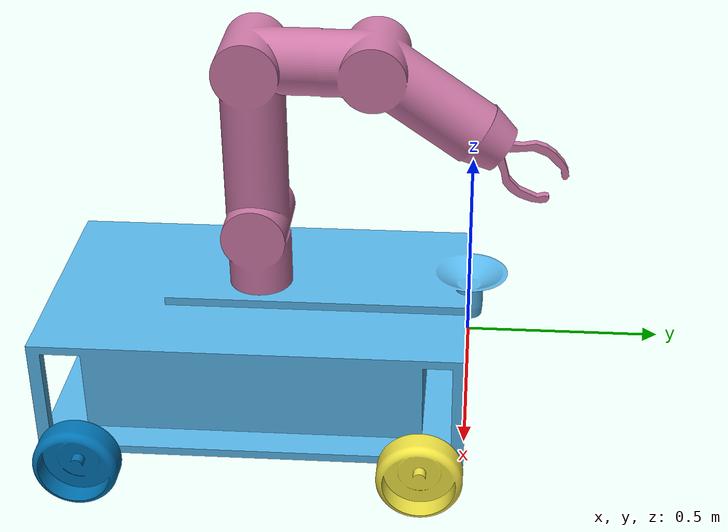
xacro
<?xml version="1.0" ?>

<robot name="applebot" xmlns:xacro="http://ros.org/wiki/xacro">
    <xacro:include filename="$(find applebot)/urdf/common_macros.xacro" />
    <xacro:include filename="$(find applebot)/urdf/robot_control.gazebo.xacro" />

    <xacro:property name="density_pla" value="100" />
    <xacro:property name="friction_wheels" value="100" />

    <!-- MOBILE PLATFORM -->

    <link name="base_footprint"/>

    <joint name="base_joint" type="fixed">
        <parent link="base_footprint"/>
        <child link="mobile_base_link" />
        <origin xyz="0 0 0" rpy="0 0 0"/>
    </joint>

    <!-- MOBILE BASE -->
    <link name="mobile_base_link">
        <visual>
            <origin xyz="0 0 0" rpy="0 0 0"/>
            <geometry>
                <mesh filename="$(find applebot)/meshes/base.stl" />
            </geometry>
        </visual>
        <collision>
            <origin xyz="0.3 -0.5 0.2" rpy="0 0 0"/>
            <geometry>
                <box size="0.600 1 0.4"/>
            </geometry>
        </collision>
        <xacro:inertial_box length="0.600" width="1" height="0.350" density="${density_pla}">
            <origin xyz="0.3 -0.5 0.2" rpy="0 0 0"/>
        </xacro:inertial_box>
    </link>

    <!-- FRONT LEFT WHEEL -->
    <joint type="continuous" name="front_left_wheel_joint">
        <origin xyz="0 -0.100 0" rpy="-${pi/2} 0 ${pi/2}"/>
        <child link="front_left_wheel_link"/>
        <parent link="mobile_base_link"/>
        <axis xyz="0 0 1" rpy="0 0 0"/>
        <limit effort="1000" velocity="1000"/>
        <dynamics damping="0.7" friction="${friction_wheels}"/>
    </joint>

    <link name="front_left_wheel_link">
        <visual>
            <origin xyz="0 0 0" rpy="0 0 0"/>
            <geometry>
                <mesh filename="$(find applebot)/meshes/wheel.stl" />
            </geometry>
        </visual>
        <collision>
            <origin xyz="0 0 0.04" rpy="0 0 0"/>
            <geometry>
                <cylinder length="0.08" radius="0.1" />
            </geometry>
        </collision>
        <xacro:inertial_cylinder radius="0.08" length="0.1" density="${density_pla}">
            <origin xyz="0 0 0.04" rpy="0 0 0"/>
        </xacro:inertial_cylinder>
    </link>

    <!-- FRONT RIGHT WHEEL -->
    <joint type="continuous" name="front_right_wheel_joint">
        <origin xyz="0.600 -0.100 0" rpy="-${pi/2} 0 -${pi/2}"/>
        <child link="front_right_wheel_link"/>
        <parent link="mobile_base_link"/>
        <axis xyz="0 0 1" rpy="0 0 0"/>
        <limit effort="1000" velocity="1000"/>
        <dynamics damping="0.7" friction="${friction_wheels}"/>
    </joint>

    <link name="front_right_wheel_link">
        <visual>
            <origin xyz="0 0 0" rpy="0 0 0"/>
            <geometry>
                <mesh filename="$(find applebot)/meshes/wheel.stl" />
            </geometry>
        </visual>
        <collision>
            <origin xyz="0 0 0.04" rpy="0 0 0"/>
            <geometry>
                <cylinder length="0.08" radius="0.1" />
            </geometry>
        </collision>
        <xacro:inertial_cylinder radius="0.08" length="0.1" density="${density_pla}">
            <origin xyz="0 0 0.04" rpy="0 0 0"/>
        </xacro:inertial_cylinder>
    </link>

    <!-- BACK RIGHT WHEEL -->
    <joint type="continuous" name="back_right_wheel_joint">
        <origin xyz="0.600 -0.900 0" rpy="-${pi/2} 0 -${pi/2}"/>
        <child link="back_right_wheel_link"/>
        <parent link="mobile_base_link"/>
        <axis xyz="0 0 1" rpy="0 0 0"/>
        <limit effort="1000" velocity="1000"/>
        <dynamics damping="0.7" friction="${friction_wheels}"/>
    </joint>

    <link name="back_right_wheel_link">
        <visual>
            <origin xyz="0 0 0" rpy="0 0 0"/>
            <geometry>
                <mesh filename="$(find applebot)/meshes/wheel.stl" />
            </geometry>
        </visual>
        <collision>
            <origin xyz="0 0 0.04" rpy="0 0 0"/>
            <geometry>
                <cylinder length="0.08" radius="0.1" />
            </geometry>
        </collision>
        <xacro:inertial_cylinder radius="0.08" length="0.1" density="${density_pla}">
            <origin xyz="0 0 0.04" rpy="0 0 0"/>
        </xacro:inertial_cylinder>
    </link>

    <!-- BACK LEFT WHEEL -->
    <joint type="continuous" name="back_left_wheel_joint">
        <origin xyz="0 -0.900 0" rpy="-${pi/2} 0 ${pi/2}"/>
        <child link="back_left_wheel_link"/>
        <parent link="mobile_base_link"/>
        <axis xyz="0 0 1" rpy="0 0 0"/>
        <limit effort="1000" velocity="1000"/>
        <dynamics damping="0.7" friction="${friction_wheels}"/>
    </joint>

    <link name="back_left_wheel_link">
        <visual>
            <origin xyz="0 0 0" rpy="0 0 0"/>
            <geometry>
                <mesh filename="$(find applebot)/meshes/wheel.stl" />
            </geometry>
        </visual>
        <collision>
            <origin xyz="0 0 0.04" rpy="0 0 0"/>
            <geometry>
                <cylinder length="0.08" radius="0.1" />
            </geometry>
        </collision>
        <xacro:inertial_cylinder radius="0.08" length="0.1" density="${density_pla}">
            <origin xyz="0 0 0.04" rpy="0 0 0"/>
        </xacro:inertial_cylinder>
    </link>

    <!-- ARM BASE -->
    <joint type="revolute" name="arm_base_joint">
        <origin xyz="0.3 -0.5 0.3" rpy="0 0 -${pi/2}"/>
        <child link="arm_base_link"/>
        <parent link="mobile_base_link"/>
        <axis xyz="0 0 1" rpy="0 0 0"/>
        <limit effort="100" velocity="100" lower="-${pi}" upper="${pi}"/>
        <dynamics damping="0.7" friction="1.0"/>
    </joint>

    <link name="arm_base_link">
        <visual>
            <origin xyz="0 0 0" rpy="0 0 0"/>
            <geometry>
                <mesh filename="$(find applebot)/meshes/armiiiii.stl" />
            </geometry>
        </visual>
        <collision>
            <origin xyz="0 0 0.3" rpy="0 0 ${pi/2}"/>
            <geometry>
                <box size="0.600 1 0.4"/>
            </geometry>
        </collision>
        <xacro:inertial_box length="0.600" width="1" height="0.350" density="0.00001">
            <origin xyz="0.3 -0.5 0.2" rpy="0 0 0"/>
        </xacro:inertial_box>
    </link>

</robot>
